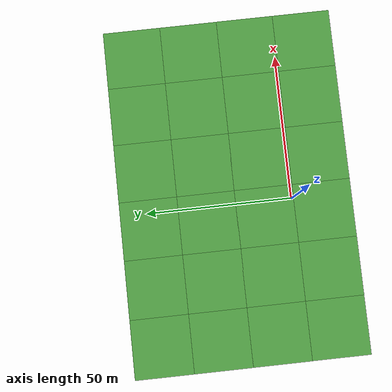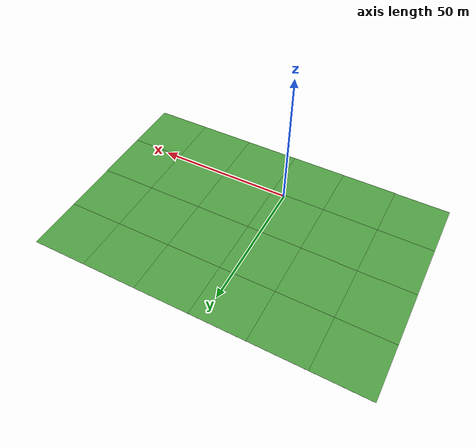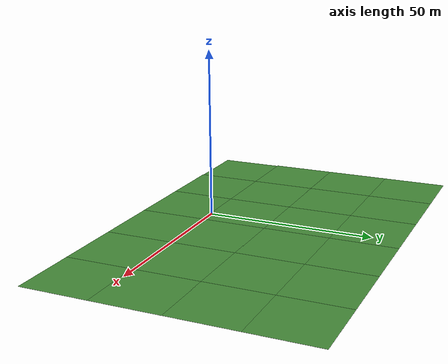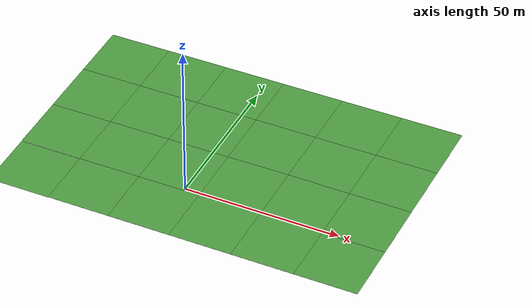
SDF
<sdf version="1.7">
 <world name="default">
  <model name="grass_plane">
   <static>1</static>
   <link name="link">
    <collision name="collision">
     <geometry><plane><normal>0 0 1</normal><size>500 500</size></plane></geometry>
     <surface><friction><ode><mu>0.5</mu><mu2>0.5</mu2></ode></friction></surface>
    </collision>
    <visual name="visual_0">
     <pose>-40 -40 0 0 -0 0</pose>
     <cast_shadows>0</cast_shadows>
     <geometry><plane><normal>0 0 1</normal><size>20 20</size></plane></geometry>
     <material>
      <script>
       <uri>model://grass_plane/materials/scripts</uri>
       <uri>model://grass_plane/materials/textures</uri>
       <name>vrc/grass</name>
      </script>
     </material>
    </visual>
    <visual name="visual_1">
     <pose>-20 -40 0 0 -0 0</pose>
     <cast_shadows>0</cast_shadows>
     <geometry><plane><normal>0 0 1</normal><size>20 20</size></plane></geometry>
     <material>
      <script>
       <uri>model://grass_plane/materials/scripts</uri>
       <uri>model://grass_plane/materials/textures</uri>
       <name>vrc/grass</name>
      </script>
     </material>
    </visual>
    <visual name="visual_2">
     <pose>0 -40 0 0 -0 0</pose>
     <cast_shadows>0</cast_shadows>
     <geometry><plane><normal>0 0 1</normal><size>20 20</size></plane></geometry>
     <material>
      <script>
       <uri>model://grass_plane/materials/scripts</uri>
       <uri>model://grass_plane/materials/textures</uri>
       <name>vrc/grass</name>
      </script>
     </material>
    </visual>
    <visual name="visual_3">
     <pose>20 -40 0 0 -0 0</pose>
     <cast_shadows>0</cast_shadows>
     <geometry><plane><normal>0 0 1</normal><size>20 20</size></plane></geometry>
     <material>
      <script>
       <uri>model://grass_plane/materials/scripts</uri>
       <uri>model://grass_plane/materials/textures</uri>
       <name>vrc/grass</name>
      </script>
     </material>
    </visual>
    <visual name="visual_4">
     <pose>40 -40 0 0 -0 0</pose>
     <cast_shadows>0</cast_shadows>
     <geometry><plane><normal>0 0 1</normal><size>20 20</size></plane></geometry>
     <material>
      <script>
       <uri>model://grass_plane/materials/scripts</uri>
       <uri>model://grass_plane/materials/textures</uri>
       <name>vrc/grass</name>
      </script>
     </material>
    </visual>
    <visual name="visual_5">
     <pose>60 -40 0 0 -0 0</pose>
     <cast_shadows>0</cast_shadows>
     <geometry><plane><normal>0 0 1</normal><size>20 20</size></plane></geometry>
     <material>
      <script>
       <uri>model://grass_plane/materials/scripts</uri>
       <uri>model://grass_plane/materials/textures</uri>
       <name>vrc/grass</name>
      </script>
     </material>
    </visual>
    <visual name="visual_6">
     <pose>-40 -20 0 0 -0 0</pose>
     <cast_shadows>0</cast_shadows>
     <geometry><plane><normal>0 0 1</normal><size>20 20</size></plane></geometry>
     <material>
      <script>
       <uri>model://grass_plane/materials/scripts</uri>
       <uri>model://grass_plane/materials/textures</uri>
       <name>vrc/grass</name>
      </script>
     </material>
    </visual>
    <visual name="visual_7">
     <pose>-20 -20 0 0 -0 0</pose>
     <cast_shadows>0</cast_shadows>
     <geometry><plane><normal>0 0 1</normal><size>20 20</size></plane></geometry>
     <material>
      <script>
       <uri>model://grass_plane/materials/scripts</uri>
       <uri>model://grass_plane/materials/textures</uri>
       <name>vrc/grass</name>
      </script>
     </material>
    </visual>
    <visual name="visual_8">
     <pose>0 -20 0 0 -0 0</pose>
     <cast_shadows>0</cast_shadows>
     <geometry><plane><normal>0 0 1</normal><size>20 20</size></plane></geometry>
     <material>
      <script>
       <uri>model://grass_plane/materials/scripts</uri>
       <uri>model://grass_plane/materials/textures</uri>
       <name>vrc/grass</name>
      </script>
     </material>
    </visual>
    <visual name="visual_9">
     <pose>20 -20 0 0 -0 0</pose>
     <cast_shadows>0</cast_shadows>
     <geometry><plane><normal>0 0 1</normal><size>20 20</size></plane></geometry>
     <material>
      <script>
       <uri>model://grass_plane/materials/scripts</uri>
       <uri>model://grass_plane/materials/textures</uri>
       <name>vrc/grass</name>
      </script>
     </material>
    </visual>
    <visual name="visual_10">
     <pose>40 -20 0 0 -0 0</pose>
     <cast_shadows>0</cast_shadows>
     <geometry><plane><normal>0 0 1</normal><size>20 20</size></plane></geometry>
     <material>
      <script>
       <uri>model://grass_plane/materials/scripts</uri>
       <uri>model://grass_plane/materials/textures</uri>
       <name>vrc/grass</name>
      </script>
     </material>
    </visual>
    <visual name="visual_11">
     <pose>60 -20 0 0 -0 0</pose>
     <cast_shadows>0</cast_shadows>
     <geometry><plane><normal>0 0 1</normal><size>20 20</size></plane></geometry>
     <material>
      <script>
       <uri>model://grass_plane/materials/scripts</uri>
       <uri>model://grass_plane/materials/textures</uri>
       <name>vrc/grass</name>
      </script>
     </material>
    </visual>
   </link>
   <pose>-5.11767 29.2655 0 0 -0 0</pose>
  </model>
  <model name="grass_plane_1">
   <static>1</static>
   <link name="link">
    <collision name="collision">
     <geometry><plane><normal>0 0 1</normal><size>500 500</size></plane></geometry>
     <surface><friction><ode><mu>0.5</mu><mu2>0.5</mu2></ode></friction></surface>
    </collision>
    <visual name="visual_0">
     <pose>-40 -40 0 0 -0 0</pose>
     <cast_shadows>0</cast_shadows>
     <geometry><plane><normal>0 0 1</normal><size>20 20</size></plane></geometry>
     <material>
      <script>
       <uri>model://grass_plane/materials/scripts</uri>
       <uri>model://grass_plane/materials/textures</uri>
       <name>vrc/grass</name>
      </script>
     </material>
    </visual>
    <visual name="visual_1">
     <pose>-20 -40 0 0 -0 0</pose>
     <cast_shadows>0</cast_shadows>
     <geometry><plane><normal>0 0 1</normal><size>20 20</size></plane></geometry>
     <material>
      <script>
       <uri>model://grass_plane/materials/scripts</uri>
       <uri>model://grass_plane/materials/textures</uri>
       <name>vrc/grass</name>
      </script>
     </material>
    </visual>
    <visual name="visual_2">
     <pose>0 -40 0 0 -0 0</pose>
     <cast_shadows>0</cast_shadows>
     <geometry><plane><normal>0 0 1</normal><size>20 20</size></plane></geometry>
     <material>
      <script>
       <uri>model://grass_plane/materials/scripts</uri>
       <uri>model://grass_plane/materials/textures</uri>
       <name>vrc/grass</name>
      </script>
     </material>
    </visual>
    <visual name="visual_3">
     <pose>20 -40 0 0 -0 0</pose>
     <cast_shadows>0</cast_shadows>
     <geometry><plane><normal>0 0 1</normal><size>20 20</size></plane></geometry>
     <material>
      <script>
       <uri>model://grass_plane/materials/scripts</uri>
       <uri>model://grass_plane/materials/textures</uri>
       <name>vrc/grass</name>
      </script>
     </material>
    </visual>
    <visual name="visual_4">
     <pose>40 -40 0 0 -0 0</pose>
     <cast_shadows>0</cast_shadows>
     <geometry><plane><normal>0 0 1</normal><size>20 20</size></plane></geometry>
     <material>
      <script>
       <uri>model://grass_plane/materials/scripts</uri>
       <uri>model://grass_plane/materials/textures</uri>
       <name>vrc/grass</name>
      </script>
     </material>
    </visual>
    <visual name="visual_5">
     <pose>60 -40 0 0 -0 0</pose>
     <cast_shadows>0</cast_shadows>
     <geometry><plane><normal>0 0 1</normal><size>20 20</size></plane></geometry>
     <material>
      <script>
       <uri>model://grass_plane/materials/scripts</uri>
       <uri>model://grass_plane/materials/textures</uri>
       <name>vrc/grass</name>
      </script>
     </material>
    </visual>
    <visual name="visual_6">
     <pose>-40 -20 0 0 -0 0</pose>
     <cast_shadows>0</cast_shadows>
     <geometry><plane><normal>0 0 1</normal><size>20 20</size></plane></geometry>
     <material>
      <script>
       <uri>model://grass_plane/materials/scripts</uri>
       <uri>model://grass_plane/materials/textures</uri>
       <name>vrc/grass</name>
      </script>
     </material>
    </visual>
    <visual name="visual_7">
     <pose>-20 -20 0 0 -0 0</pose>
     <cast_shadows>0</cast_shadows>
     <geometry><plane><normal>0 0 1</normal><size>20 20</size></plane></geometry>
     <material>
      <script>
       <uri>model://grass_plane/materials/scripts</uri>
       <uri>model://grass_plane/materials/textures</uri>
       <name>vrc/grass</name>
      </script>
     </material>
    </visual>
    <visual name="visual_8">
     <pose>0 -20 0 0 -0 0</pose>
     <cast_shadows>0</cast_shadows>
     <geometry><plane><normal>0 0 1</normal><size>20 20</size></plane></geometry>
     <material>
      <script>
       <uri>model://grass_plane/materials/scripts</uri>
       <uri>model://grass_plane/materials/textures</uri>
       <name>vrc/grass</name>
      </script>
     </material>
    </visual>
    <visual name="visual_9">
     <pose>20 -20 0 0 -0 0</pose>
     <cast_shadows>0</cast_shadows>
     <geometry><plane><normal>0 0 1</normal><size>20 20</size></plane></geometry>
     <material>
      <script>
       <uri>model://grass_plane/materials/scripts</uri>
       <uri>model://grass_plane/materials/textures</uri>
       <name>vrc/grass</name>
      </script>
     </material>
    </visual>
    <visual name="visual_10">
     <pose>40 -20 0 0 -0 0</pose>
     <cast_shadows>0</cast_shadows>
     <geometry><plane><normal>0 0 1</normal><size>20 20</size></plane></geometry>
     <material>
      <script>
       <uri>model://grass_plane/materials/scripts</uri>
       <uri>model://grass_plane/materials/textures</uri>
       <name>vrc/grass</name>
      </script>
     </material>
    </visual>
    <visual name="visual_11">
     <pose>60 -20 0 0 -0 0</pose>
     <cast_shadows>0</cast_shadows>
     <geometry><plane><normal>0 0 1</normal><size>20 20</size></plane></geometry>
     <material>
      <script>
       <uri>model://grass_plane/materials/scripts</uri>
       <uri>model://grass_plane/materials/textures</uri>
       <name>vrc/grass</name>
      </script>
     </material>
    </visual>
   </link>
   <pose>-5.14384 69.1271 0 0 -0 0</pose>
  </model>
 </world>
</sdf>
